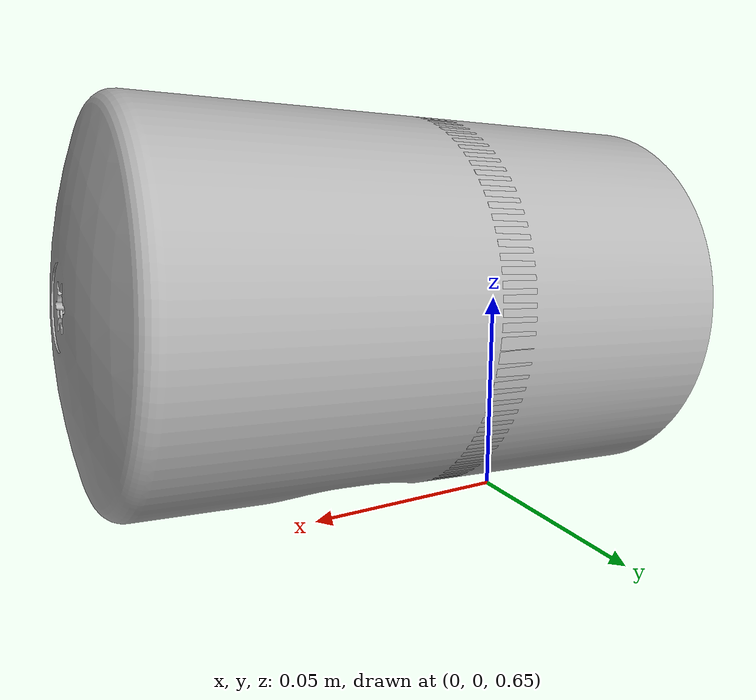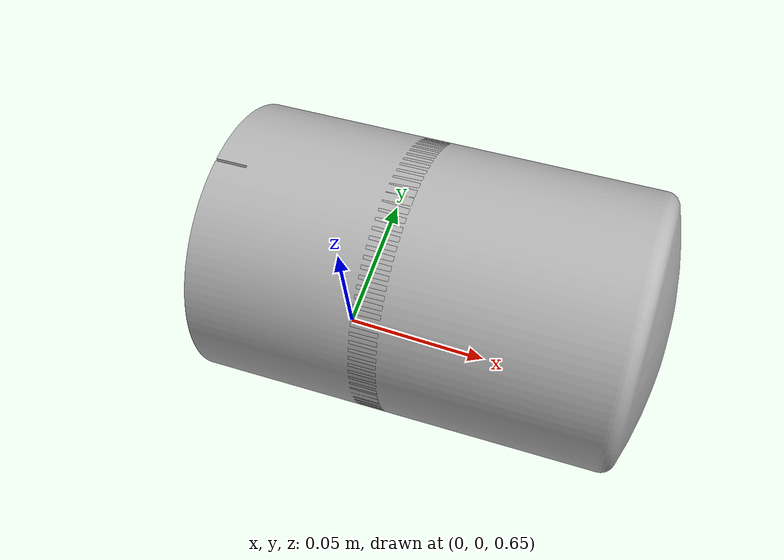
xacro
<?xml version="1.0"?>
<!-- Provides a world frame and mounts the lidar sensor to it. -->
<robot xmlns:xacro="http://ros.org/wiki/xacro" name="lidar_model">
  <xacro:arg name="sensor_name" default="velodyne"/>
  <xacro:arg name="topic" default="velodyne_points" />
  <xacro:arg name="horizontal_angular_resolution_deg" default="1.0" />
  <xacro:arg name="spin_frequency_hz" default="0.5" />
  <xacro:arg name="lidar_base_frame" default="velodyne_base" />
  <xacro:arg name="lidar_points_frame" default="velodyne_top" />
  <xacro:arg name="world_frame" default="world" />
  <xacro:arg name="namespace" default="lidar_model" />

  <link name="$(arg world_frame)" />
  <xacro:include filename="$(find rotors_description)/urdf/velodyne_HDL_32E.urdf.xacro"/>
  <HDL-32E parent="$(arg world_frame)"
           sensor_name="$(arg sensor_name)"
           topic="$(arg topic)"
           horizontal_angular_resolution_deg="$(arg horizontal_angular_resolution_deg)"
           spin_frequency_hz="$(arg spin_frequency_hz)"
           lidar_base_frame="$(arg lidar_base_frame)"
           lidar_points_frame="$(arg lidar_points_frame)"
           namespace="$(arg namespace)">
    <origin xyz="0 0 0.7" rpy="0 1.5 0" />
  </HDL-32E>
</robot>

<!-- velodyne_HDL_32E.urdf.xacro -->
<robot xmlns:xacro="http://ros.org/wiki/xacro" name="HDL-32E">
  <xacro:property name="M_PI" value="3.1415926535897931" />
  <xacro:macro name="HDL-32E" params="*origin parent:=world sensor_name:=velodyne topic:=/velodyne_points horizontal_angular_resolution_deg:=1.0 spin_frequency_hz:=0.5 lidar_base_frame:=velodyne_base lidar_points_frame:=velodyne_top namespace:=example min_range:=0.06">

    <gazebo>
      <plugin name="JointController" filename="libgazebo_ros_continous_joint_controller_plugin.so">
        <joint>${namespace}/${sensor_name}_joint</joint>
	      <robot_namespace>${namespace}</robot_namespace>
	      <default_velocity_limit>100</default_velocity_limit>
        <spin_frequency_hz>${spin_frequency_hz}</spin_frequency_hz>
      </plugin>
    </gazebo>

  <link name="${namespace}/${lidar_base_frame}">
    <inertial>
      <mass value="1.2"/>
      <origin rpy="0 0 0" xyz="0 0 0.029335"/>
      <inertia ixx="0.001087473" ixy="0" ixz="0" iyy="0.001087473" iyz="0" izz="0.001092437"/>
    </inertial>
    <collision name="${namespace}/${lidar_base_frame}_collision">
      <origin rpy="0 0 0" xyz="0 0 0.02933"/>
      <geometry>
        <cylinder length=".05867" radius=".04267"/>
      </geometry>
    </collision>
    <visual name="${namespace}/${lidar_base_frame}_visual">
      <origin rpy="0 0 0" xyz="0 0 -0.029335"/>
      <geometry>
        <mesh filename="package://rotors_description/meshes/velodyne_base.dae" scale="1.0 1.0 1.0"/>
      </geometry>
    </visual>
  </link>

  <link name="${namespace}/${lidar_points_frame}">
    <inertial>
      <mass value="0.1"/>
      <origin rpy="0 0 0" xyz="0 0 0.095455"/>
      <inertia ixx="0.000090623" ixy="0" ixz="0" iyy="0.000090623" iyz="0" izz="0.000091036"/>
    </inertial>
    <collision name="${sensor_name}_top_collision">
      <origin rpy="0 0 0" xyz="0 0 0.03678"/>
      <geometry>
        <cylinder length="0.07357" radius="0.04267"/>
      </geometry>
    </collision>
    <visual name="${sensor_name}_top_visual">
      <origin rpy="0 0 ${M_PI/2}" xyz="0 0 -0.0376785"/>
      <geometry>
        <mesh filename="package://rotors_description/meshes/velodyne_top.dae" scale="1.0 1.0 1.0"/>
      </geometry>
    </visual>
  </link>

  <joint name="${namespace}/${lidar_base_frame}_mount_joint" type="fixed">
    <xacro:insert_block name="origin" />
    <parent link="${parent}"/>
    <child link="${namespace}/${lidar_base_frame}"/>
  </joint>

  <joint name="${namespace}/${sensor_name}_joint" type="continuous">
    <parent link="${namespace}/${lidar_base_frame}"/>
    <child link="${namespace}/${lidar_points_frame}"/>
    <origin rpy="0 0 0" xyz="0 0 0.05867"/>
    <axis xyz="0 0 1"/>
    <limit effort="100.0" velocity="100.0"/>
  </joint>

  <gazebo reference="${namespace}/${lidar_points_frame}">
    <!-- Add a ray sensor, and give it a name -->
    <sensor type="ray" name="sensor">
      <pose>0 0 -0.004645 0 0 0</pose>
      <!-- Enable visualization to see the rays in the GUI -->
      <visualize>true</visualize>

      <!-- Set the update rate of the sensor -->
      <update_rate>${360.0/horizontal_angular_resolution_deg*spin_frequency_hz}</update_rate>
      <ray>
        <noise>
          <!-- Use gaussian noise -->
          <type>gaussian</type>
          <mean>0.0</mean>
          <stddev>0.02</stddev>
        </noise>
        <scan>
          <horizontal>
            <samples>1</samples>
            <resolution>1</resolution>
            <min_angle>0</min_angle>
            <max_angle>${2*M_PI}</max_angle>
          </horizontal>
          <vertical>
            <samples>32</samples>
            <resolution>1</resolution>
            <min_angle>-0.53529248</min_angle>
            <max_angle>0.18622663</max_angle>
          </vertical>
        </scan>

        <!-- Range defines characteristics of an individual beam -->
        <range>
          <!-- Minimum distance of the beam -->
          <min>${min_range}</min>
          <!-- Maximum distance of the beam -->
          <max>70</max>
          <!-- Linear resolution of the beam -->
          <resolution>0.02</resolution>
        </range>
      </ray>
      <plugin name="gazebo_ros_laser_plugin" filename="libgazebo_ros_laser_plugin.so">
        <robot_namespace>${namespace}</robot_namespace>
        <joint_name>${namespace}/${sensor_name}_joint</joint_name>
        <topic_name>${topic}</topic_name>
        <frame_name>${lidar_points_frame}</frame_name>
        <min_range>${min_range}</min_range>
        <max_range>70</max_range>
        <gaussian_noise>0.02</gaussian_noise>
      </plugin>
    </sensor>
  </gazebo>
  </xacro:macro>
</robot>
